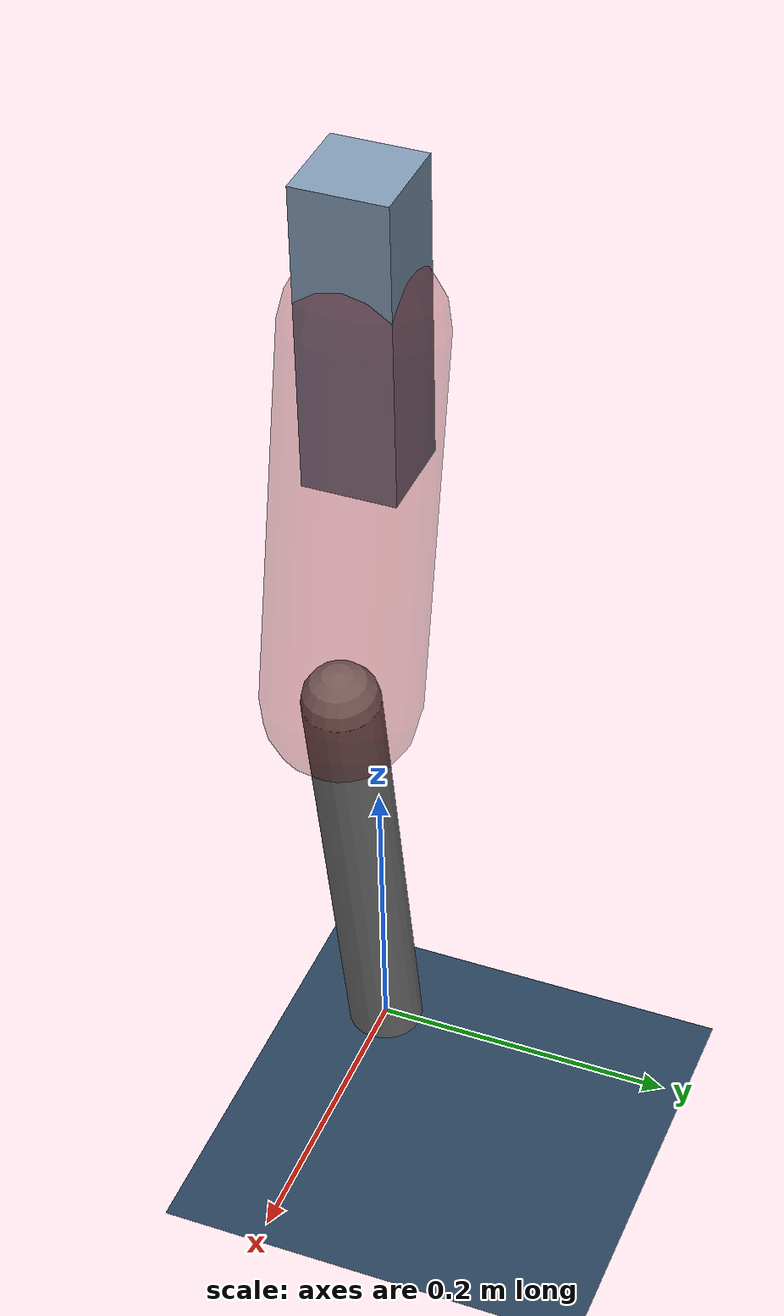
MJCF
<mujoco model="Hopper2D">
	<compiler inertiafromgeom="true" angle="radian" />
	<option timestep="0.001" integrator="implicit" cone="elliptic" solver="Newton" tolerance="1e-10" />

	<default>
		<geom contype="1" conaffinity="1" condim="3" friction="2 0.005 0.0001" solref="0.005 1" />
		<joint limited="true" damping="0.1" />
	</default>

	<asset>
		<texture name="skybox" type="skybox" builtin="gradient" rgb1=".4 .6 .8" rgb2="0 0 0" width="800" height="800" />
		<texture name="grid" type="2d" builtin="checker" rgb1=".1 .2 .3" rgb2=".2 .3 .4" width="300" height="300" mark="edge" markrgb=".2 .3 .4" />
		<material name="ground" texture="grid" texrepeat="1 1" texuniform="true" reflectance="0.1" />
		<material name="leg" rgba="0.5 0.6 0.7 1" />
	</asset>

	<worldbody>

		<geom name="floor" type="plane" size="5 5 0.25" material="ground" />

		<light directional="false" diffuse="0.8 0.8 0.8" specular="0.3 0.3 0.3" pos="0 0 2" dir="0 0 -1" />
		<light mode="targetbodycom" target="base" directional="false" diffuse="0.8 0.8 0.8" specular="0.3 0.3 0.3" pos="0 0 2" dir="0 0 -1" />

		<camera name="fixed" pos="0 -2 1" xyaxes="1 0 0 0 0 1" />
		<camera name="tracking" mode="trackcom" pos="0 -3 1" />

		<body name="root" pos="0 0 0.5616805023490099">
			<joint name="slide_x" type="slide" axis="1 0 0" range="-100 100" />
			<joint name="slide_z" type="slide" axis="0 0 1" range="0 10" />

			<body name="base" pos="0 0 0">
				<geom name="torso" type="box" size="0.03 0.03 0.1" mass="2.051" material="leg" />

				<body name="link1" pos="0 0 0" euler="0 1.3529307745867918 0">
					<joint type="hinge" axis="0 -1 0" pos="0 0 0" name="hinge1" limited="true" range="-3.14 3.14" stiffness="0" damping="0.1" />
					<geom name="thigh" type="capsule" fromto="0 0 0 0.24344506994068948 0 0" size="0.05" rgba="0.5 0 0 0.3" mass="0.8394571818457927" />

					<body name="link2" pos="0.24344506994068948 0 0" euler="0 0.3788711431216933 0">
						<joint type="hinge" axis="0 -1 0" pos="0 0 0" name="hinge2" limited="true" range="-3.14 3.14" stiffness="0" damping="0.1" />
						<geom name="shank" type="capsule" fromto="0 0 0 0.3282354324083204 0 0" size="0.025" mass="0.5063883459266563" />

					</body>
				</body>
			</body>
		</body>
	</worldbody>

	<actuator>
		<motor name="torque1" joint="hinge1" ctrlrange="-27.903173792613778 27.903173792613778" ctrllimited="true" gear="1" />
		<motor name="torque2" joint="hinge2" ctrlrange="-68.88678969813313 68.88678969813313" ctrllimited="true" gear="1" />
	</actuator>
</mujoco>
